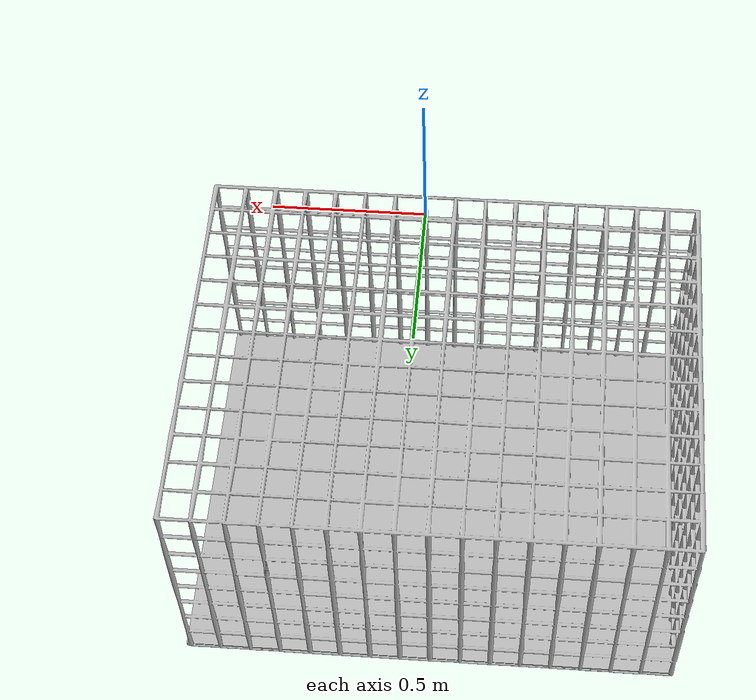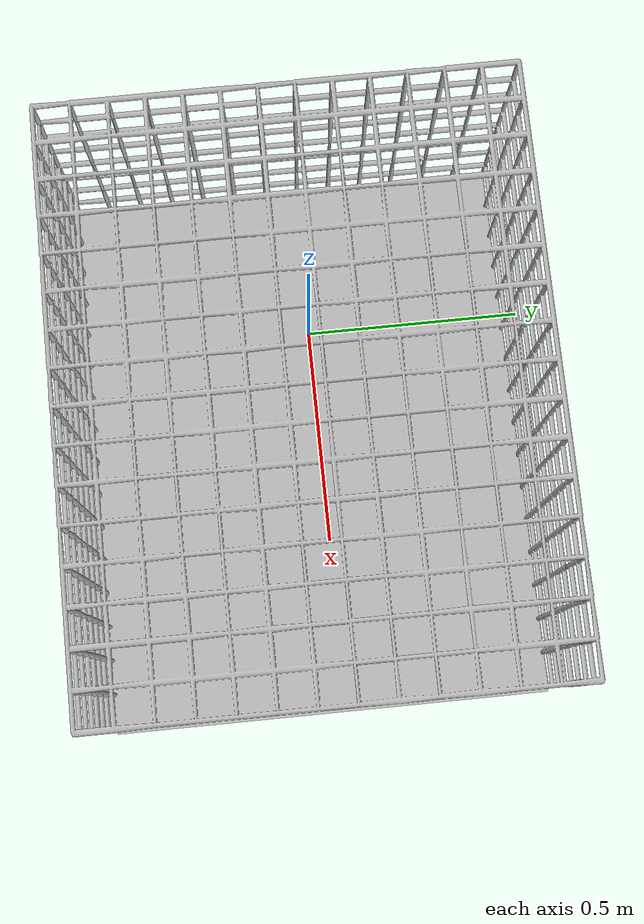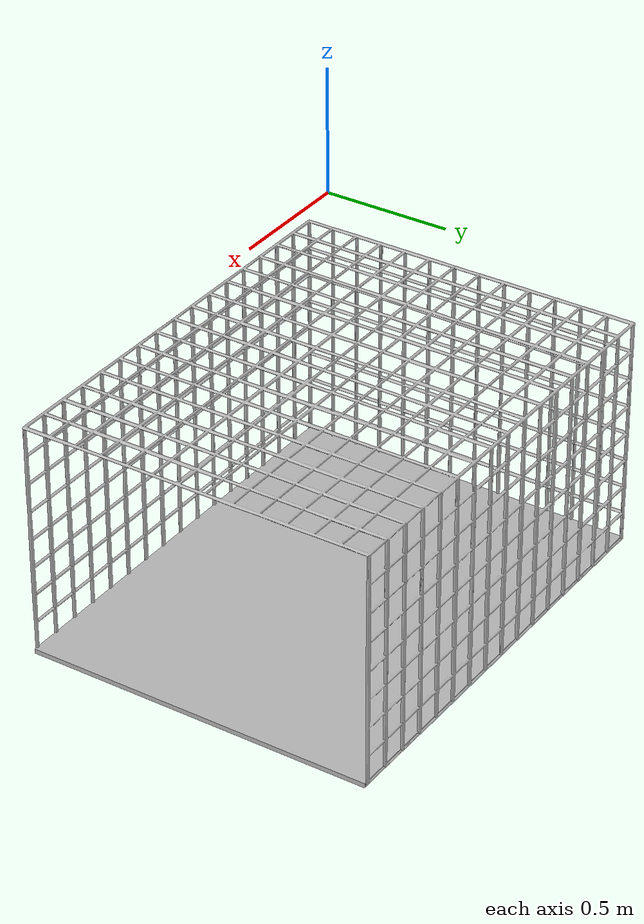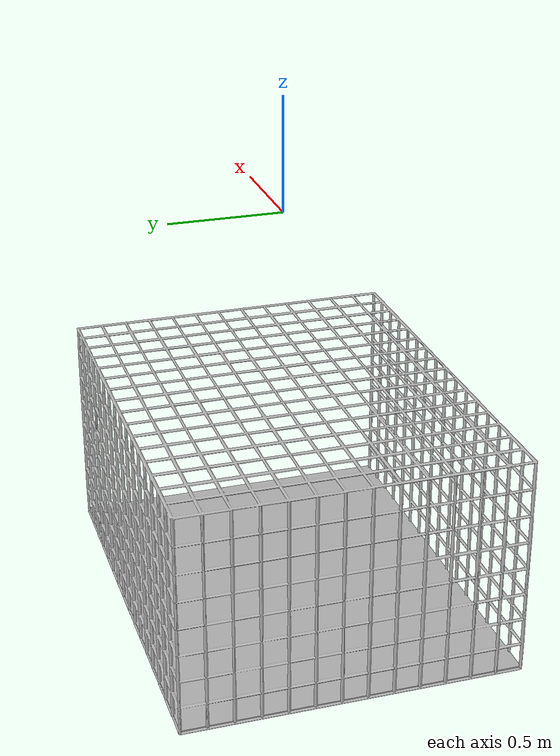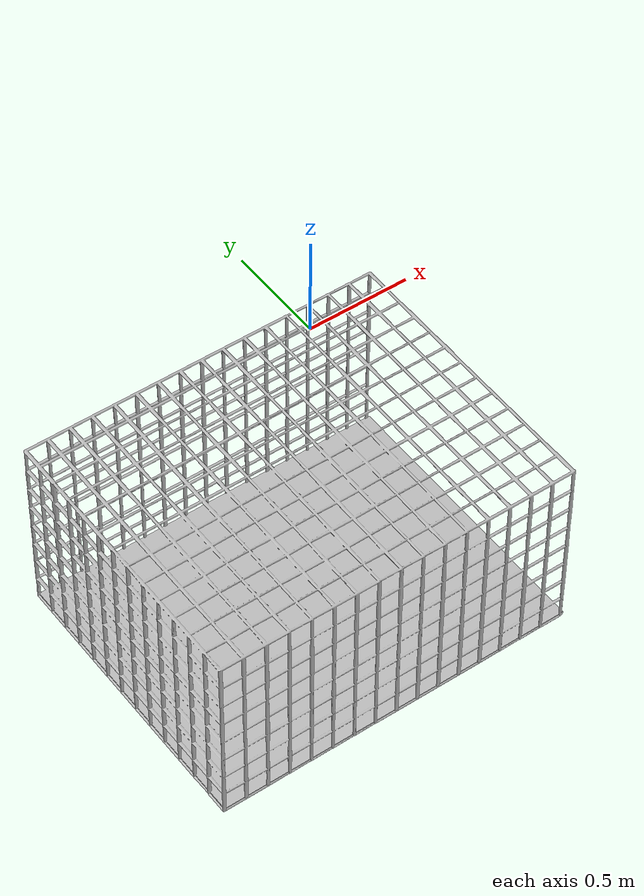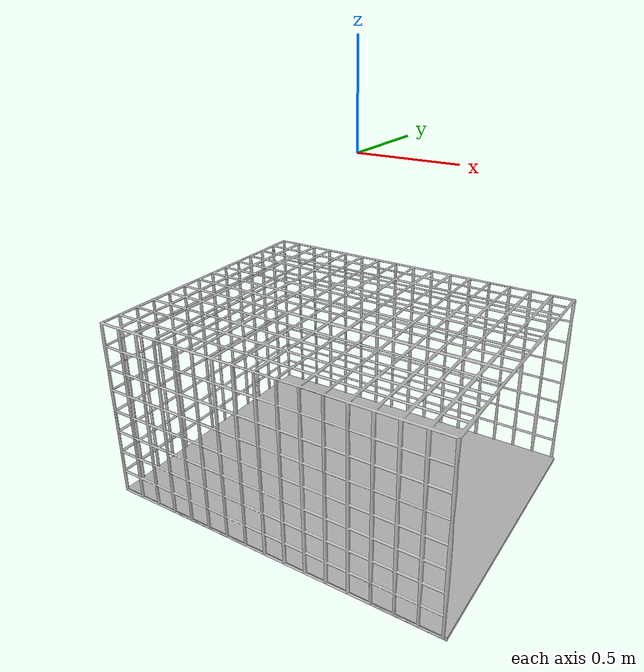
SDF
<?xml version="1.0" ?>
<sdf version="1.6">
<plugin name="gazebo_ros_api_plugin" filename="libgazebo_ros_api_plugin.so"/>
<plugin name="gazebo_ros_factory" filename="libgazebo_ros_factory.so"/>
  <world name="default">

    <!-- Include your custom model -->
    <include>
      <uri>model://cage</uri>
      <pose>0 0 -1.3 1.5708 0 0</pose> <!-- Adjust as needed -->
    </include>

    <gravity>0 0 -9.8</gravity>
    <magnetic_field>6e-06 2.3e-05 -4.2e-05</magnetic_field>
    <atmosphere type='adiabatic'/>

    <physics name='default_physics' default='0' type='ode'>
      <max_step_size>0.0005</max_step_size>
      <real_time_factor>1</real_time_factor>
      <real_time_update_rate>2000</real_time_update_rate>
    </physics>

  </world>
</sdf>

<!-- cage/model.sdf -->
<sdf version="1.6">
  <model name="cage">
    <static>true</static>
    <link name="cage_link">
      <visual name="cage_visual">
        <geometry>
          <mesh>
            <uri>model://cage/meshes/Cage.obj</uri>
            <!-- Optional: Uncomment and adjust if your mesh is too large/small -->
            <scale>2 2 2</scale>
          </mesh>
        </geometry>
      </visual>
      <collision name="cage_collision">
        <geometry>
          <mesh>
            <uri>model://cage/meshes/Cage.obj</uri>
          </mesh>
        </geometry>
      </collision>
    </link>
  </model>
</sdf>
